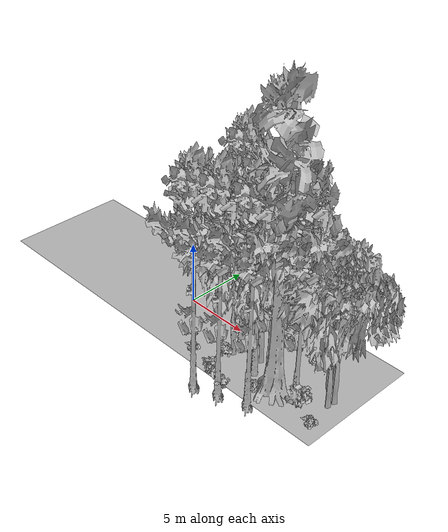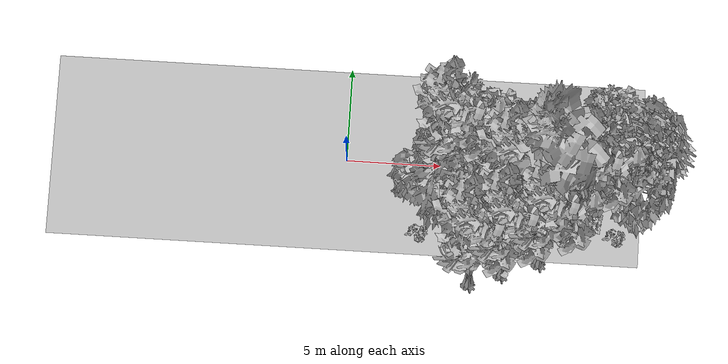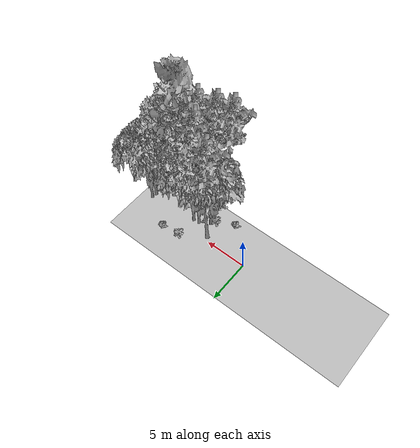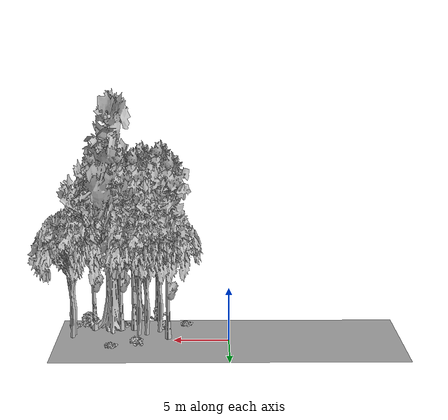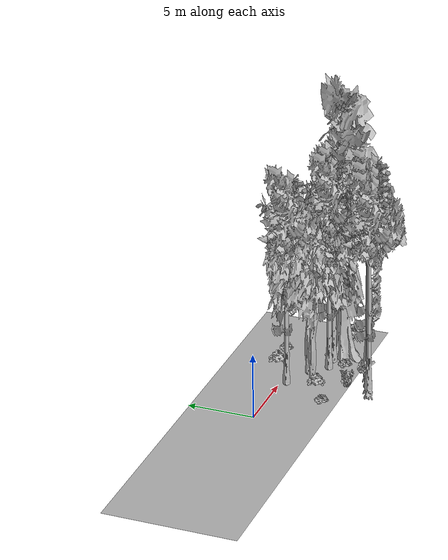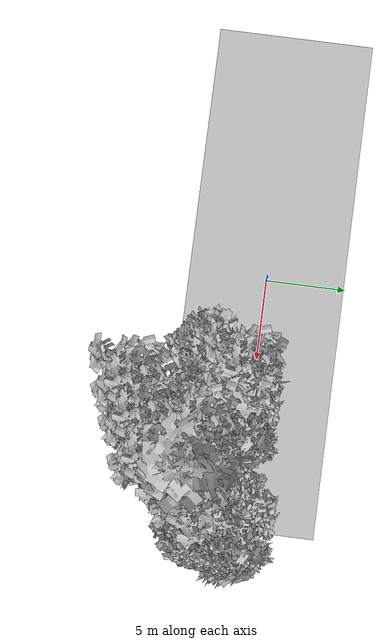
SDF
<sdf version="1.7">
 <world name="default">
  <model name="ground_plane">
   <static>1</static>
   <link name="link">
    <collision name="collision">
     <geometry><plane><normal>0 0 1</normal><size>100 100</size></plane></geometry>
     <surface><contact><ode><min_depth>0.01</min_depth><max_vel>0</max_vel></ode></contact></surface>
    </collision>
    <visual name="grass">
     <cast_shadows>0</cast_shadows>
     <geometry>
      <mesh>
       <scale>0.5814285714285714 0.18142857142857144 0.1</scale>
       <uri>file://grass_plane/meshes/grass_plane.dae</uri>
      </mesh>
     </geometry>
    </visual>
   </link>
  </model>
  <model name="Tree 41">
   <static>1</static>
   <pose>8.488647891739916 -5.712136385296793 0 1.57079 -0 0</pose>
   <link name="link">
    <collision name="collision">
     <geometry><mesh><scale>3.5 5 3.5</scale><uri>model://tree_9/meshes/tree_9.obj</uri></mesh></geometry>
    </collision>
    <visual name="visual">
     <geometry><mesh><scale>3.5 5 3.5</scale><uri>model://tree_9/meshes/tree_9.obj</uri></mesh></geometry>
    </visual>
   </link>
  </model>
  <model name="Tree 54">
   <static>1</static>
   <pose>5.5355745608585565 -0.4659872596296726 0 1.57079 -0 0</pose>
   <link name="link">
    <collision name="collision">
     <geometry><mesh><scale>3.5 5 3.5</scale><uri>model://tree_9/meshes/tree_9.obj</uri></mesh></geometry>
    </collision>
    <visual name="visual">
     <geometry><mesh><scale>3.5 5 3.5</scale><uri>model://tree_9/meshes/tree_9.obj</uri></mesh></geometry>
    </visual>
   </link>
  </model>
  <model name="Tree 80">
   <static>1</static>
   <pose>12.493743047740985 -2.6044081364055423 0 1.57079 -0 0</pose>
   <link name="link">
    <collision name="collision">
     <geometry><mesh><scale>3.5 5 3.5</scale><uri>model://tree_9/meshes/tree_9.obj</uri></mesh></geometry>
    </collision>
    <visual name="visual">
     <geometry><mesh><scale>3.5 5 3.5</scale><uri>model://tree_9/meshes/tree_9.obj</uri></mesh></geometry>
    </visual>
   </link>
  </model>
  <model name="Tree 150">
   <static>1</static>
   <pose>10.475631363770816 -4.9828472883438195 0 1.57079 -0 0</pose>
   <link name="link">
    <collision name="collision">
     <geometry><mesh><scale>3.5 5 3.5</scale><uri>model://tree_9/meshes/tree_9.obj</uri></mesh></geometry>
    </collision>
    <visual name="visual">
     <geometry><mesh><scale>3.5 5 3.5</scale><uri>model://tree_9/meshes/tree_9.obj</uri></mesh></geometry>
    </visual>
   </link>
  </model>
  <model name="Tree 182">
   <static>1</static>
   <pose>6.281749871060107 -2.153042950134145 0 1.57079 -0 0</pose>
   <link name="link">
    <collision name="collision">
     <geometry><mesh><scale>3.5 5 3.5</scale><uri>model://tree_2/meshes/tree_2.obj</uri></mesh></geometry>
    </collision>
    <visual name="visual">
     <geometry><mesh><scale>3.5 5 3.5</scale><uri>model://tree_2/meshes/tree_2.obj</uri></mesh></geometry>
    </visual>
   </link>
  </model>
  <model name="Tree 224">
   <static>1</static>
   <pose>10.851690308209825 -2.96585231319672 0 1.57079 -0 0</pose>
   <link name="link">
    <collision name="collision">
     <geometry><mesh><scale>3.5 5 3.5</scale><uri>model://tree_4/meshes/tree_4.obj</uri></mesh></geometry>
    </collision>
    <visual name="visual">
     <geometry><mesh><scale>3.5 5 3.5</scale><uri>model://tree_4/meshes/tree_4.obj</uri></mesh></geometry>
    </visual>
   </link>
  </model>
  <model name="Tree 233">
   <static>1</static>
   <pose>10.003622265413135 -2.5095186851713045 0 1.57079 -0 0</pose>
   <link name="link">
    <collision name="collision">
     <geometry><mesh><scale>3.5 5 3.5</scale><uri>model://tree_9/meshes/tree_9.obj</uri></mesh></geometry>
    </collision>
    <visual name="visual">
     <geometry><mesh><scale>3.5 5 3.5</scale><uri>model://tree_9/meshes/tree_9.obj</uri></mesh></geometry>
    </visual>
   </link>
  </model>
  <model name="Tree 244">
   <static>1</static>
   <pose>8.813393230025113 -2.5808542527863505 0 1.57079 -0 0</pose>
   <link name="link">
    <collision name="collision">
     <geometry><mesh><scale>3.5 5 3.5</scale><uri>model://tree_9/meshes/tree_9.obj</uri></mesh></geometry>
    </collision>
    <visual name="visual">
     <geometry><mesh><scale>3.5 5 3.5</scale><uri>model://tree_9/meshes/tree_9.obj</uri></mesh></geometry>
    </visual>
   </link>
  </model>
  <model name="Tree 260">
   <static>1</static>
   <pose>8.172290454544523 -1.3556464466409643 0 1.57079 -0 0</pose>
   <link name="link">
    <collision name="collision">
     <geometry><mesh><scale>3.5 5 3.5</scale><uri>model://tree_2/meshes/tree_2.obj</uri></mesh></geometry>
    </collision>
    <visual name="visual">
     <geometry><mesh><scale>3.5 5 3.5</scale><uri>model://tree_2/meshes/tree_2.obj</uri></mesh></geometry>
    </visual>
   </link>
  </model>
  <model name="Tree 281">
   <static>1</static>
   <pose>14.207999010512225 -0.8455016827341684 0 1.57079 -0 0</pose>
   <link name="link">
    <collision name="collision">
     <geometry><mesh><scale>3.5 5 3.5</scale><uri>model://tree_2/meshes/tree_2.obj</uri></mesh></geometry>
    </collision>
    <visual name="visual">
     <geometry><mesh><scale>3.5 5 3.5</scale><uri>model://tree_2/meshes/tree_2.obj</uri></mesh></geometry>
    </visual>
   </link>
  </model>
  <model name="Tree 321">
   <static>1</static>
   <pose>7.451321921887917 -1.4478571029506302 0 1.57079 -0 0</pose>
   <link name="link">
    <collision name="collision">
     <geometry><mesh><scale>3.5 5 3.5</scale><uri>model://tree_2/meshes/tree_2.obj</uri></mesh></geometry>
    </collision>
    <visual name="visual">
     <geometry><mesh><scale>3.5 5 3.5</scale><uri>model://tree_2/meshes/tree_2.obj</uri></mesh></geometry>
    </visual>
   </link>
  </model>
  <model name="Tree 392">
   <static>1</static>
   <pose>6.809236591810112 -6.328175394814831 0 1.57079 -0 0</pose>
   <link name="link">
    <collision name="collision">
     <geometry><mesh><scale>3.5 5 3.5</scale><uri>model://tree_9/meshes/tree_9.obj</uri></mesh></geometry>
    </collision>
    <visual name="visual">
     <geometry><mesh><scale>3.5 5 3.5</scale><uri>model://tree_9/meshes/tree_9.obj</uri></mesh></geometry>
    </visual>
   </link>
  </model>
  <model name="Tree 415">
   <static>1</static>
   <pose>14.139767364309293 -1.4150703225535572 0 1.57079 -0 0</pose>
   <link name="link">
    <collision name="collision">
     <geometry><mesh><scale>3.5 5 3.5</scale><uri>model://tree_2/meshes/tree_2.obj</uri></mesh></geometry>
    </collision>
    <visual name="visual">
     <geometry><mesh><scale>3.5 5 3.5</scale><uri>model://tree_2/meshes/tree_2.obj</uri></mesh></geometry>
    </visual>
   </link>
  </model>
  <model name="Bush 57">
   <static>1</static>
   <pose>14.414323193748302 -3.376062592099098 0 1.57079 -0 0</pose>
   <link name="link">
    <collision name="collision">
     <geometry><mesh><scale>2 2 2</scale><uri>model://bush_2/meshes/bush_2.obj</uri></mesh></geometry>
     <surface><contact><collide_without_contact>false</collide_without_contact></contact></surface>
    </collision>
    <visual name="visual">
     <geometry><mesh><scale>2 2 2</scale><uri>model://bush_2/meshes/bush_2.obj</uri></mesh></geometry>
    </visual>
   </link>
  </model>
  <model name="Bush 93">
   <static>1</static>
   <pose>12.896809665653109 -2.946666565198676 0 1.57079 -0 0</pose>
   <link name="link">
    <collision name="collision">
     <geometry><mesh><scale>2 2 2</scale><uri>model://bush_1/meshes/bush_1.obj</uri></mesh></geometry>
     <surface><contact><collide_without_contact>false</collide_without_contact></contact></surface>
    </collision>
    <visual name="visual">
     <geometry><mesh><scale>2 2 2</scale><uri>model://bush_1/meshes/bush_1.obj</uri></mesh></geometry>
    </visual>
   </link>
  </model>
  <model name="Bush 102">
   <static>1</static>
   <pose>10.623272648108653 1.4228736855848219 0 1.57079 -0 0</pose>
   <link name="link">
    <collision name="collision">
     <geometry><mesh><scale>2 2 2</scale><uri>model://bush_2/meshes/bush_2.obj</uri></mesh></geometry>
     <surface><contact><collide_without_contact>false</collide_without_contact></contact></surface>
    </collision>
    <visual name="visual">
     <geometry><mesh><scale>2 2 2</scale><uri>model://bush_2/meshes/bush_2.obj</uri></mesh></geometry>
    </visual>
   </link>
  </model>
  <model name="Bush 104">
   <static>1</static>
   <pose>8.487205594108694 -5.4171364165912 0 1.57079 -0 0</pose>
   <link name="link">
    <collision name="collision">
     <geometry><mesh><scale>2 2 2</scale><uri>model://bush_0/meshes/bush_0.obj</uri></mesh></geometry>
     <surface><contact><collide_without_contact>false</collide_without_contact></contact></surface>
    </collision>
    <visual name="visual">
     <geometry><mesh><scale>2 2 2</scale><uri>model://bush_0/meshes/bush_0.obj</uri></mesh></geometry>
    </visual>
   </link>
  </model>
  <model name="Bush 155">
   <static>1</static>
   <pose>8.368017099642834 1.3097459139161067 0 1.57079 -0 0</pose>
   <link name="link">
    <collision name="collision">
     <geometry><mesh><scale>2 2 2</scale><uri>model://bush_3/meshes/bush_3.obj</uri></mesh></geometry>
     <surface><contact><collide_without_contact>false</collide_without_contact></contact></surface>
    </collision>
    <visual name="visual">
     <geometry><mesh><scale>2 2 2</scale><uri>model://bush_3/meshes/bush_3.obj</uri></mesh></geometry>
    </visual>
   </link>
  </model>
  <model name="Bush 216">
   <static>1</static>
   <pose>3.954508833544054 -3.7441169294731544 0 1.57079 -0 0</pose>
   <link name="link">
    <collision name="collision">
     <geometry><mesh><scale>2 2 2</scale><uri>model://bush_2/meshes/bush_2.obj</uri></mesh></geometry>
     <surface><contact><collide_without_contact>false</collide_without_contact></contact></surface>
    </collision>
    <visual name="visual">
     <geometry><mesh><scale>2 2 2</scale><uri>model://bush_2/meshes/bush_2.obj</uri></mesh></geometry>
    </visual>
   </link>
  </model>
  <model name="Bush 219">
   <static>1</static>
   <pose>6.056799522463727 -2.5612394407466113 0 1.57079 -0 0</pose>
   <link name="link">
    <collision name="collision">
     <geometry><mesh><scale>2 2 2</scale><uri>model://bush_3/meshes/bush_3.obj</uri></mesh></geometry>
     <surface><contact><collide_without_contact>false</collide_without_contact></contact></surface>
    </collision>
    <visual name="visual">
     <geometry><mesh><scale>2 2 2</scale><uri>model://bush_3/meshes/bush_3.obj</uri></mesh></geometry>
    </visual>
   </link>
  </model>
  <model name="Bush 282">
   <static>1</static>
   <pose>9.697267609406602 -3.5401239466830408 0 1.57079 -0 0</pose>
   <link name="link">
    <collision name="collision">
     <geometry><mesh><scale>2 2 2</scale><uri>model://bush_2/meshes/bush_2.obj</uri></mesh></geometry>
     <surface><contact><collide_without_contact>false</collide_without_contact></contact></surface>
    </collision>
    <visual name="visual">
     <geometry><mesh><scale>2 2 2</scale><uri>model://bush_2/meshes/bush_2.obj</uri></mesh></geometry>
    </visual>
   </link>
  </model>
  <model name="Bush 291">
   <static>1</static>
   <pose>6.659767020206026 -4.759928083130415 0 1.57079 -0 0</pose>
   <link name="link">
    <collision name="collision">
     <geometry><mesh><scale>2 2 2</scale><uri>model://bush_4/meshes/bush_4.obj</uri></mesh></geometry>
     <surface><contact><collide_without_contact>false</collide_without_contact></contact></surface>
    </collision>
    <visual name="visual">
     <geometry><mesh><scale>2 2 2</scale><uri>model://bush_4/meshes/bush_4.obj</uri></mesh></geometry>
    </visual>
   </link>
  </model>
 </world>
</sdf>
